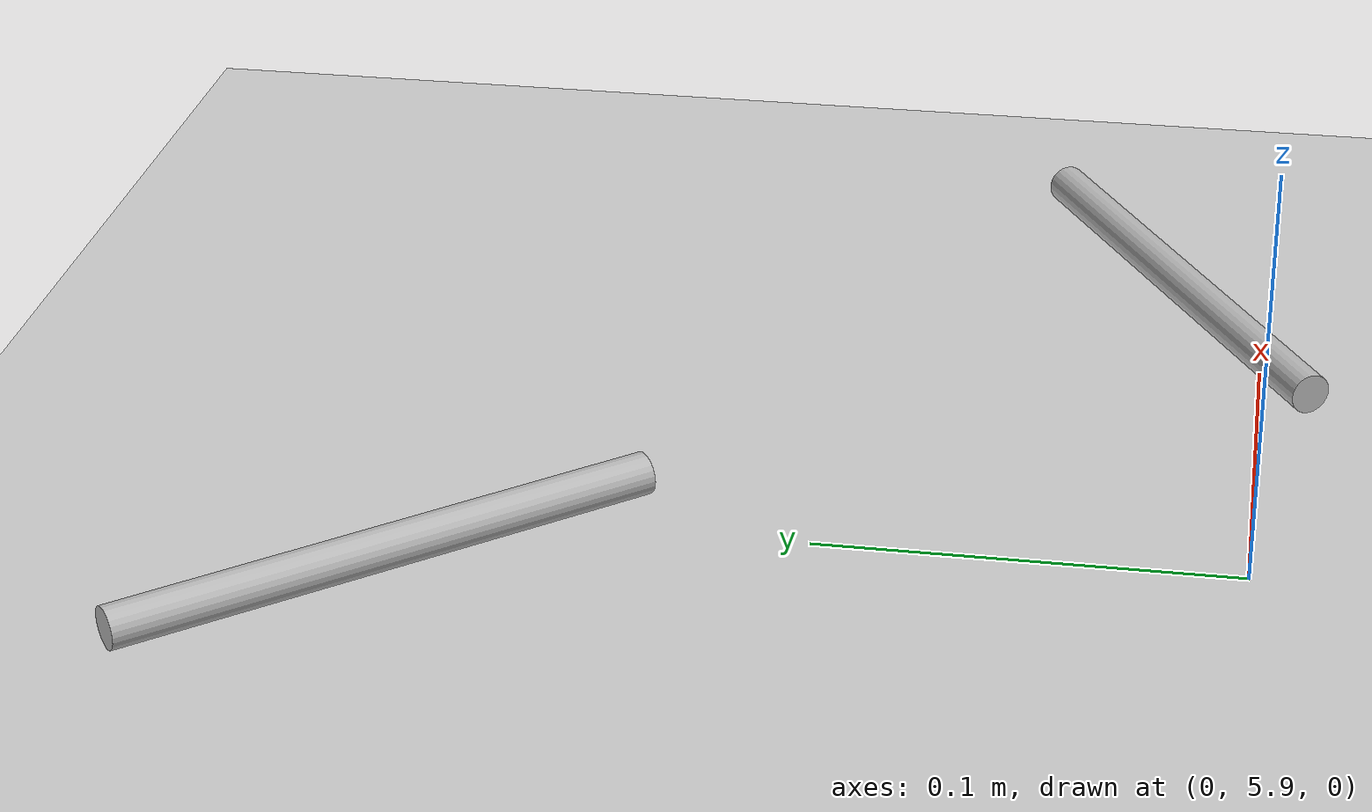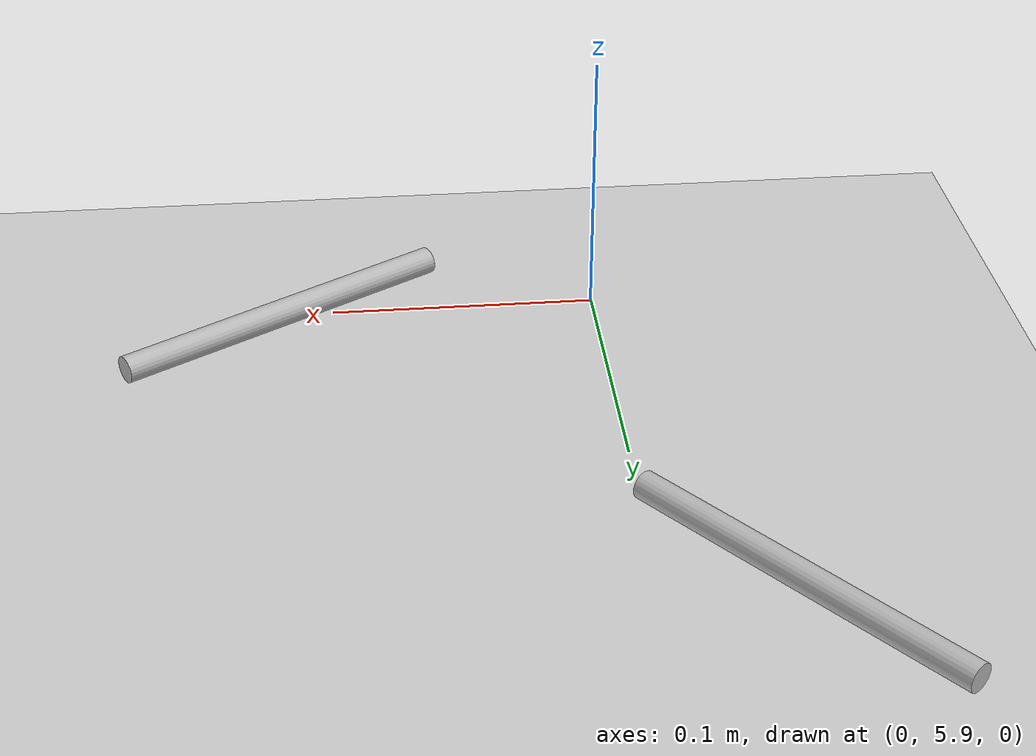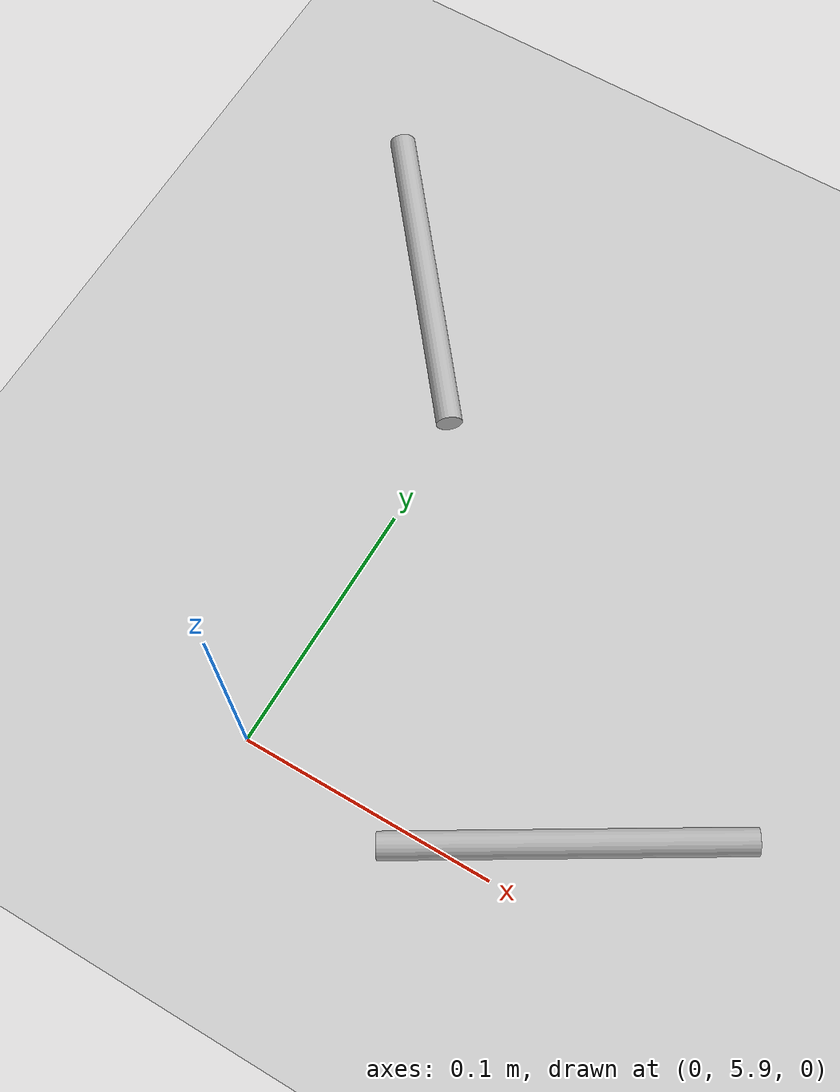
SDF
<sdf version="1.4">
 <world name="default">
  <light name="sun" type="directional">
   <pose>0 0 10 0 -0 0</pose>
   <diffuse>0.8 0.8 0.8 1</diffuse>
   <specular>0.2 0.2 0.2 1</specular>
   <attenuation>
    <range>1000</range>
    <constant>0.9</constant>
    <linear>0.01</linear>
    <quadratic>0.001</quadratic>
   </attenuation>
   <direction>-0.5 0.1 -0.9</direction>
  </light>
  <model name="ground_plane">
   <static>1</static>
   <link name="link">
    <collision name="collision">
     <geometry><plane><normal>0 0 1</normal><size>100 100</size></plane></geometry>
     <surface><friction><ode><mu>100</mu><mu2>50</mu2></ode></friction></surface>
    </collision>
    <visual name="visual">
     <cast_shadows>0</cast_shadows>
     <geometry><plane><normal>0 0 1</normal><size>100 100</size></plane></geometry>
     <material>
      <script><uri>file://media/materials/scripts/gazebo.material</uri><name>Gazebo/Grey</name></script>
     </material>
    </visual>
    <velocity_decay><linear>0</linear><angular>0</angular></velocity_decay>
   </link>
  </model>
  <physics type="ode">
   <max_step_size>0.001</max_step_size>
   <real_time_factor>1</real_time_factor>
   <real_time_update_rate>1000</real_time_update_rate>
   <gravity>0 0 -9.8</gravity>
  </physics>
  <scene><ambient>0.4 0.4 0.4 1</ambient><background>0.7 0.7 0.7 1</background><shadows>1</shadows></scene>
  <spherical_coordinates>
   <surface_model>EARTH_WGS84</surface_model>
   <latitude_deg>0</latitude_deg>
   <longitude_deg>0</longitude_deg>
   <elevation>0</elevation>
   <heading_deg>0</heading_deg>
  </spherical_coordinates>
  <model name="blue marker">
   <link name="link">
    <pose>0 0 0.115 0 -0 0</pose>
    <inertial>
     <mass>0.05</mass>
     <inertia><ixx>0.00058</ixx><ixy>0</ixy><ixz>0</ixz><iyy>0.00058</iyy><iyz>0</iyz><izz>0.00019</izz></inertia>
    </inertial>
    <collision name="collision">
     <geometry><cylinder><radius>0.005</radius><length>0.13</length></cylinder></geometry>
    </collision>
    <visual name="visual">
     <geometry><cylinder><radius>0.005</radius><length>0.13</length></cylinder></geometry>
     <material>
      <script>
       <uri>model://blue_marker/materials/scripts</uri>
       <uri>model://blue_marker/materials/textures</uri>
       <name>blue_marker/Diffuse</name>
      </script>
     </material>
    </visual>
    <collision name="collision_anti_slip_ring_top">
     <pose>0 0 0.04 0 -0 0</pose>
     <geometry><cylinder><radius>0.015</radius><length>0.01</length></cylinder></geometry>
    </collision>
    <collision name="collision_anti_slip_ring_bot">
     <pose>0 0 -0.04 0 -0 0</pose>
     <geometry><cylinder><radius>0.015</radius><length>0.01</length></cylinder></geometry>
    </collision>
    <velocity_decay><linear>0</linear><angular>0</angular></velocity_decay>
   </link>
   <pose>0.019779 5.86244 0.014993 1.57089 1.37929 2.11117</pose>
   <static>0</static>
  </model>
  <model name="red marker">
   <link name="link">
    <pose>0 0 0.115 0 -0 0</pose>
    <inertial>
     <mass>0.05</mass>
     <inertia><ixx>0.00058</ixx><ixy>0</ixy><ixz>0</ixz><iyy>0.00058</iyy><iyz>0</iyz><izz>0.00019</izz></inertia>
    </inertial>
    <collision name="collision">
     <geometry><cylinder><radius>0.005</radius><length>0.13</length></cylinder></geometry>
    </collision>
    <visual name="visual">
     <geometry><cylinder><radius>0.005</radius><length>0.13</length></cylinder></geometry>
     <material>
      <script>
       <uri>model://red_marker/materials/scripts</uri>
       <uri>model://red_marker/materials/textures</uri>
       <name>red_marker/Diffuse</name>
      </script>
     </material>
    </visual>
    <collision name="collision_anti_slip_ring_top">
     <pose>0 0 0.04 0 -0 0</pose>
     <geometry><cylinder><radius>0.015</radius><length>0.01</length></cylinder></geometry>
    </collision>
    <collision name="collision_anti_slip_ring_bot">
     <pose>0 0 -0.04 0 -0 0</pose>
     <geometry><cylinder><radius>0.015</radius><length>0.01</length></cylinder></geometry>
    </collision>
    <velocity_decay><linear>0</linear><angular>0</angular></velocity_decay>
   </link>
   <pose>0.032995 6 0.01499 -0.685656 -1.57077 -0.198037</pose>
   <static>0</static>
  </model>
 </world>
</sdf>
